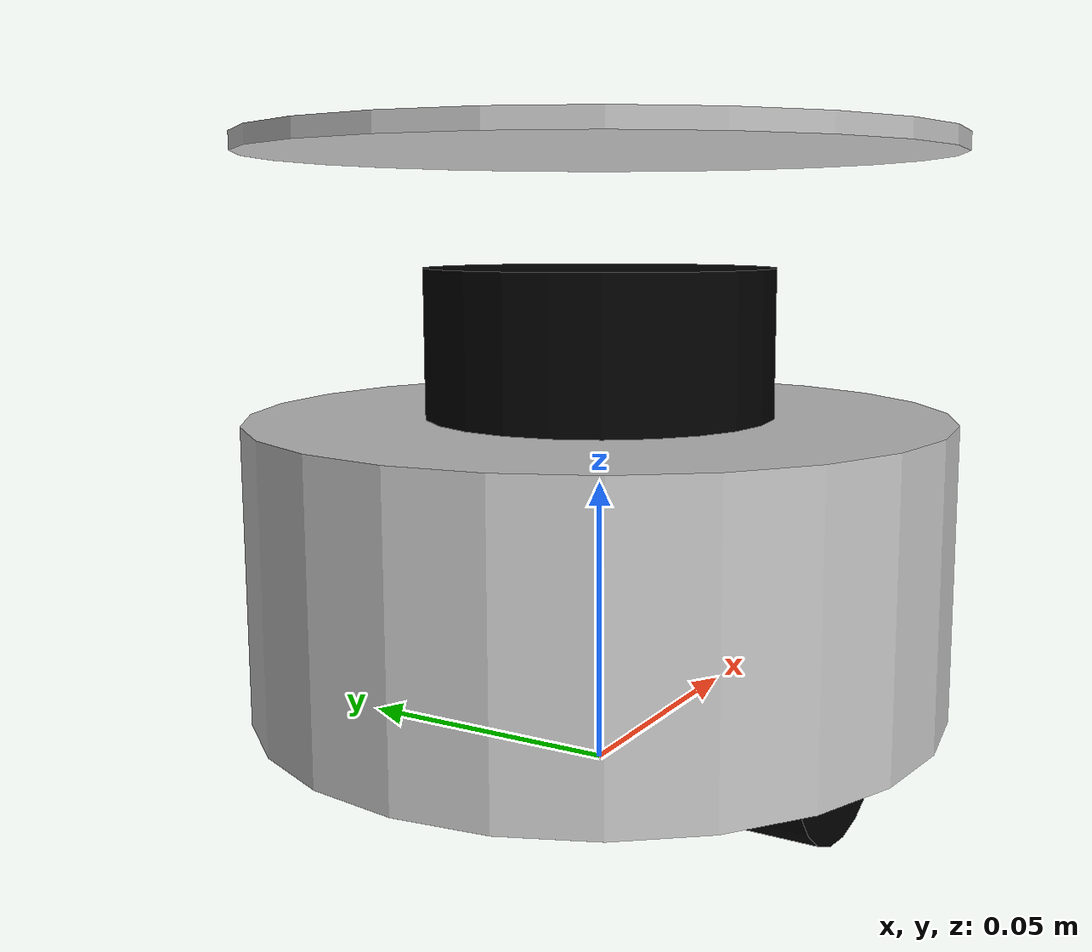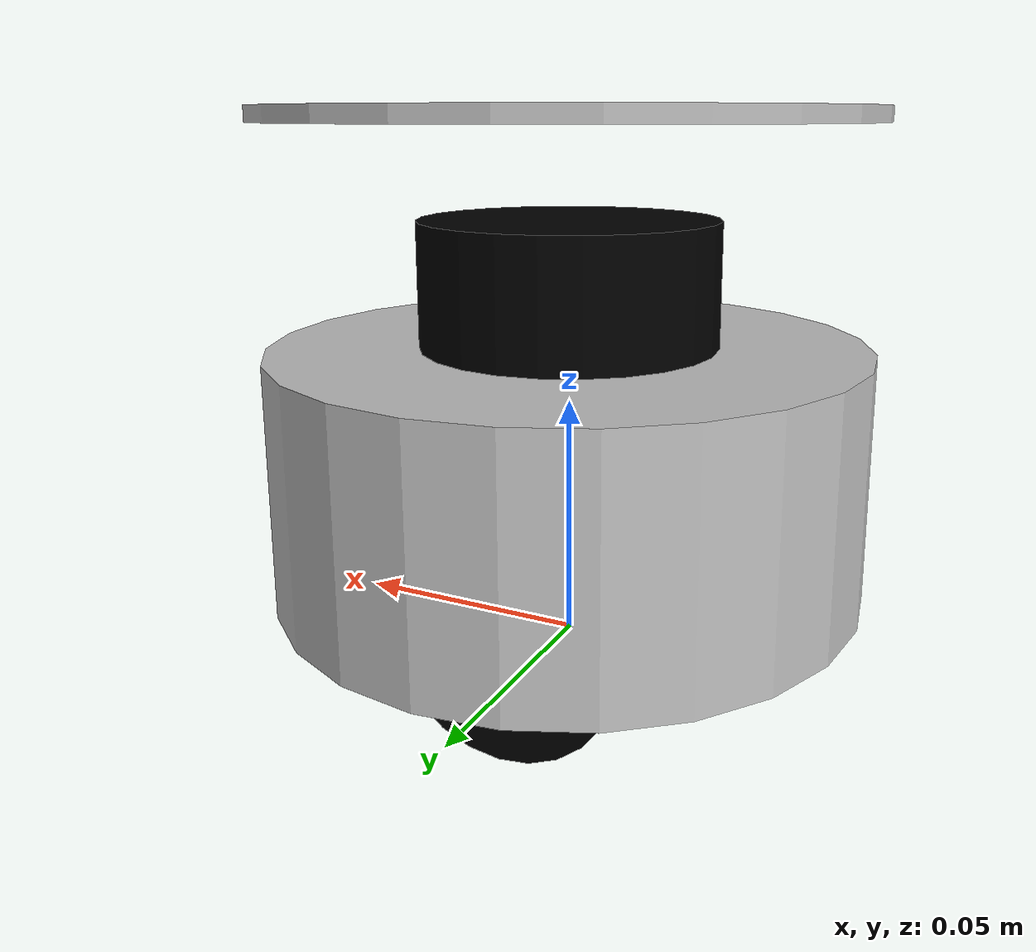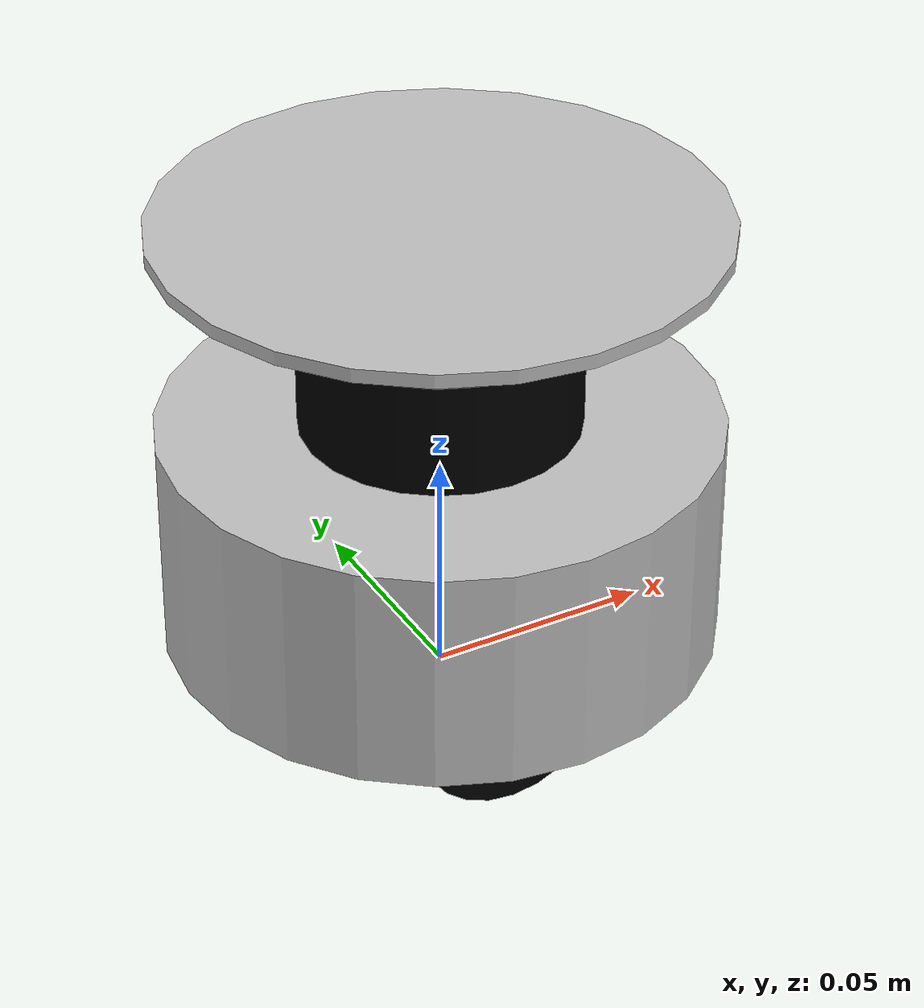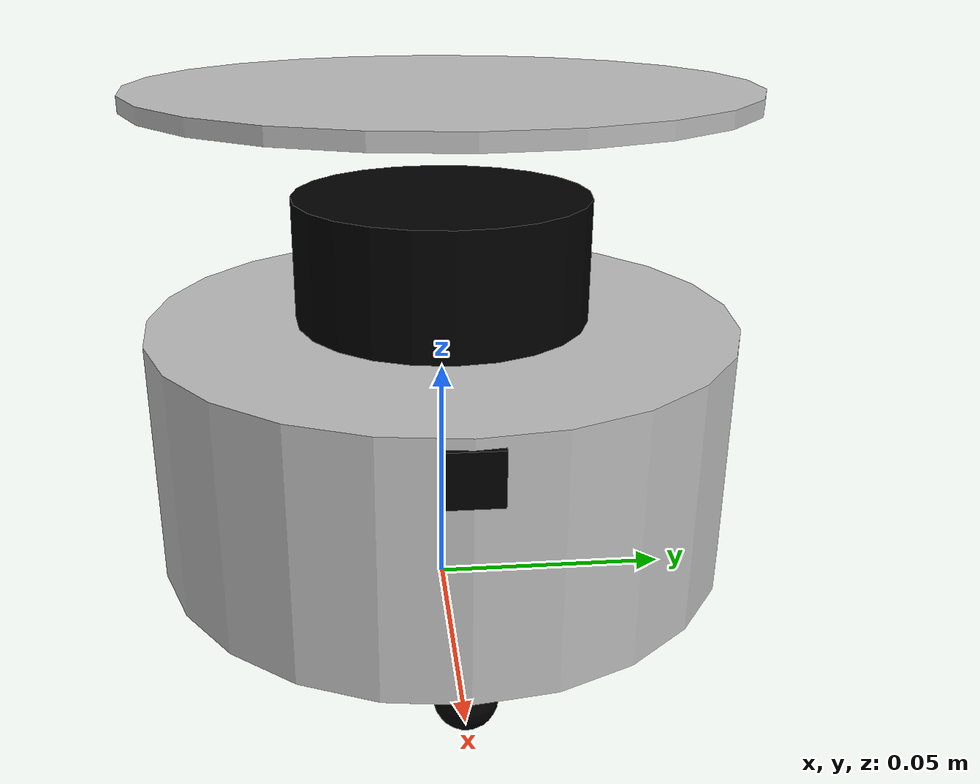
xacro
<?xml version="1.0"?>
<robot name="arm" xmlns:xacro="http://www.ros.org/wiki/xacro">

    <xacro:include filename="$(find hawkbot_description)/urdf/xacro/hawkbot_base.xacro" />

    <xacro:include filename="$(find hawkbot_description)/urdf/xacro/sensors/camera.xacro" />

    <!-- Camera -->
    <joint name="camera_joint" type="fixed">
        <origin xyz="0.058 0 0.018" rpy="0 0 0" />
        <parent link="base_link"/>
        <child link="camera_link"/>
    </joint>
    <xacro:usb_camera prefix="camera"/>

    <xacro:include filename="$(find hawkbot_description)/urdf/xacro/sensors/lidar.xacro" />
    <!-- lidar -->
    <joint name="lidar_joint" type="fixed">
        <origin xyz="0 0 0.035" rpy="0 0 0" />
        <parent link="base_link"/>
        <child link="laser_link"/>
    </joint>
    <xacro:rplidar prefix="laser"/>

    <xacro:hawkbot_base/>
</robot>

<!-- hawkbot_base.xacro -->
<robot name="hawkbot" xmlns:xacro="http://www.ros.org/wiki/xacro">

    <!-- PROPERTY LIST -->
    <xacro:property name="M_PI" value="3.1415926"/>
    <xacro:property name="base_radius" value="0.06"/>
    <xacro:property name="base_length" value="0.05"/>

    <xacro:property name="wheel_radius" value="0.022"/>
    <xacro:property name="wheel_length" value="0.018"/>
    <xacro:property name="wheel_joint_y" value="0.04"/>
    <xacro:property name="wheel_joint_z" value="0.015"/>

    <xacro:property name="caster_radius" value="0.006"/> <!-- wheel_radius - ( base_length/2 - wheel_joint_z) -->
    <xacro:property name="caster_joint_x" value="0.05"/>

    <!-- Defining the colors used in this robot -->
    <material name="yellow">
        <color rgba="1 0.4 0 1"/>
    </material>
    <material name="black">
        <color rgba="0 0 0 0.95"/>
    </material>
    <material name="gray">
        <color rgba="0.75 0.75 0.75 1"/>
    </material>

    <!-- Macro for robot wheel -->
    <xacro:macro name="wheel" params="prefix reflect">
        <joint name="${prefix}_wheel_joint" type="continuous">
            <origin xyz="-0.01 ${reflect*wheel_joint_y} ${-wheel_joint_z}" rpy="0 0 0"/>
            <parent link="base_link"/>
            <child link="${prefix}_wheel_link"/>
            <axis xyz="0 1 0"/>
        </joint>

        <link name="${prefix}_wheel_link">
            <visual>
                <origin xyz="0 0 0" rpy="${M_PI/2} 0 0" />
                <geometry>
                    <cylinder radius="${wheel_radius}" length = "${wheel_length}"/>
                </geometry>
                <material name="black" />
            </visual>
        </link>
    </xacro:macro>

    <!-- Macro for robot caster -->
    <xacro:macro name="caster" params="prefix reflect">
        <joint name="${prefix}_caster_joint" type="continuous">
            <origin xyz="${reflect*caster_joint_x} 0 ${-(base_length/2 + caster_radius)}" rpy="0 0 0"/>
            <parent link="base_link"/>
            <child link="${prefix}_caster_link"/>
            <axis xyz="0 1 0"/>
        </joint>

        <link name="${prefix}_caster_link">
            <visual>
                <origin xyz="0 0 0" rpy="0 0 0"/>
                <geometry>
                    <sphere radius="${caster_radius}" />
                </geometry>
                <material name="black" />
            </visual>
        </link>
    </xacro:macro>

    <xacro:macro name="hawkbot_base">
        <link name="base_footprint">
            <visual>
                <origin xyz="0 0 0" rpy="0 0 0" />
                <geometry>
                    <box size="0.001 0.001 0.001" />
                </geometry>
            </visual>
        </link>

        <joint name="base_footprint_joint" type="fixed">
            <origin xyz="0 0 ${base_length/2 + caster_radius*2}" rpy="0 0 0" />
            <parent link="base_footprint"/>
            <child link="base_link" />
        </joint>

        <link name="base_link">
            <visual>
                <origin xyz=" 0 0 0" rpy="0 0 0" />
                <geometry>
                    <cylinder length="${base_length}" radius="${base_radius}"/>
                </geometry>
                <material name="gray" />
            </visual>
            <visual>
               <origin xyz="0 0 0.07" rpy="0 0 0" />
               <geometry>
                     <cylinder length="0.003" radius="0.06"/>
               </geometry>
            <material name="gray" />
    </visual>
        </link>

        <xacro:wheel prefix="left" reflect="-1"/>
        <xacro:wheel prefix="right" reflect="1"/>
         <xacro:caster prefix="front" reflect="1"/>
    </xacro:macro>
</robot>

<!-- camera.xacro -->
<robot xmlns:xacro="http://www.ros.org/wiki/xacro" name="camera">

    <xacro:macro name="usb_camera" params="prefix:=camera">
        <link name="${prefix}_link">
            <visual>
                <origin xyz=" 0 0 0 " rpy="0 0 0" />
                <geometry>
                    <box size="0.005 0.01 0.01" />
                </geometry>
                <material name="black"/>
            </visual>
        </link>
    </xacro:macro>

</robot>

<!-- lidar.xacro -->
<robot xmlns:xacro="http://www.ros.org/wiki/xacro" name="laser">

	<xacro:macro name="rplidar" params="prefix:=laser">
		<link name="${prefix}_link">
			<visual>
				<origin xyz=" 0 0 0 " rpy="0 0 0" />
				<geometry>
					<cylinder length="0.03" radius="0.03"/>
				</geometry>
				<material name="black"/>
			</visual>
		</link>
	</xacro:macro>

</robot>
